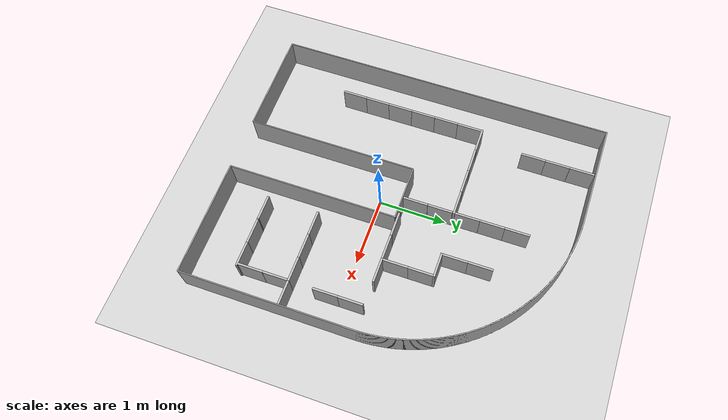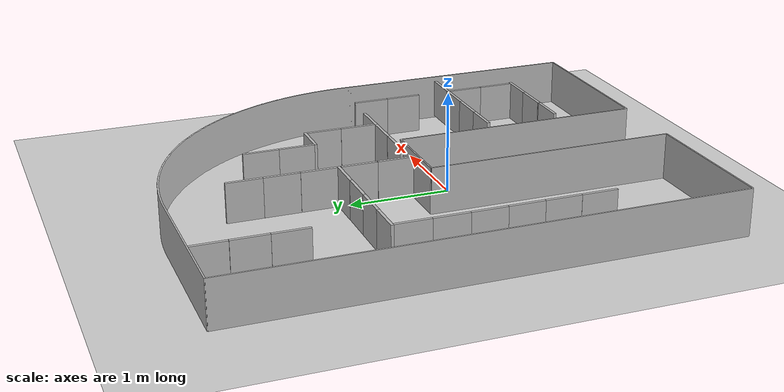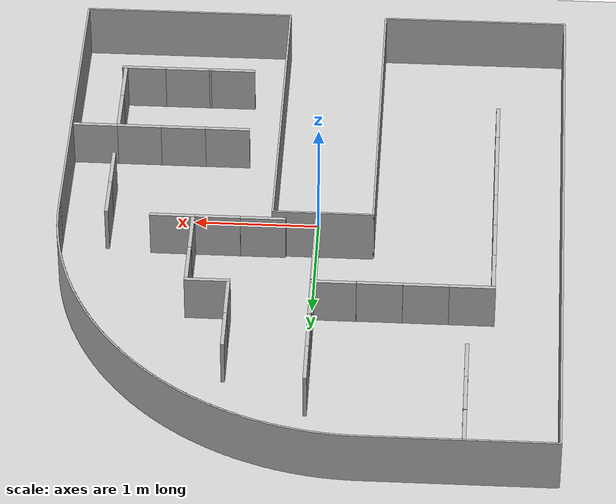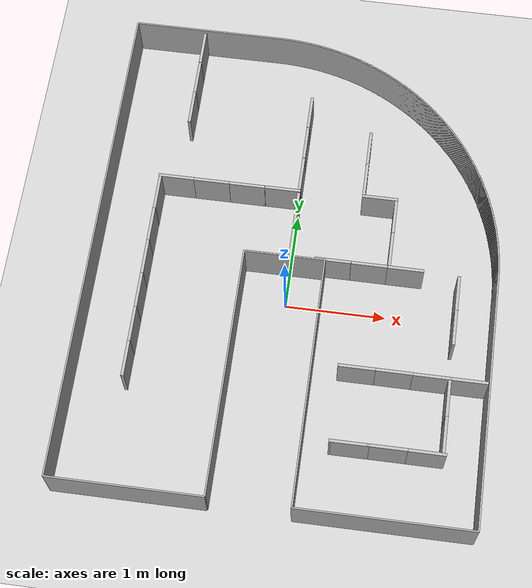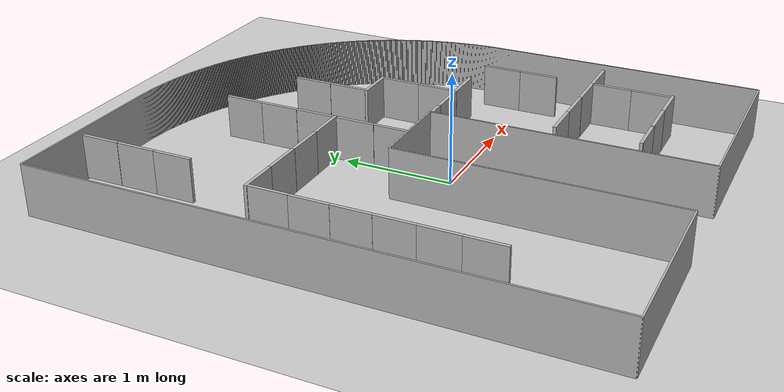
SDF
<sdf version="1.7">
 <world name="default">
  <light name="sun" type="directional">
   <pose>0 0 10 0 -0 0</pose>
   <diffuse>0.8 0.8 0.8 1</diffuse>
   <specular>0.2 0.2 0.2 1</specular>
   <attenuation>
    <range>1000</range>
    <constant>0.9</constant>
    <linear>0.01</linear>
    <quadratic>0.001</quadratic>
   </attenuation>
   <direction>-0.5 0.1 -0.9</direction>
   <spot><inner_angle>0</inner_angle><outer_angle>0</outer_angle><falloff>0</falloff></spot>
  </light>
  <model name="ground_plane">
   <static>1</static>
   <link name="link">
    <collision name="collision">
     <geometry><plane><normal>0 0 1</normal><size>100 100</size></plane></geometry>
     <surface>
      <contact><collide_bitmask>65535</collide_bitmask></contact>
      <friction><ode><mu>100</mu><mu2>50</mu2></ode></friction>
     </surface>
    </collision>
    <visual name="visual">
     <cast_shadows>0</cast_shadows>
     <geometry><plane><normal>0 0 1</normal><size>100 100</size></plane></geometry>
     <material>
      <script><uri>file://media/materials/scripts/gazebo.material</uri><name>Gazebo/Grey</name></script>
     </material>
    </visual>
   </link>
  </model>
  <gravity>0 0 -9.8</gravity>
  <magnetic_field>6e-06 2.3e-05 -4.2e-05</magnetic_field>
  <atmosphere type="adiabatic"/>
  <physics type="ode">
   <max_step_size>0.001</max_step_size>
   <real_time_factor>1</real_time_factor>
   <real_time_update_rate>1000</real_time_update_rate>
  </physics>
  <scene><ambient>0.4 0.4 0.4 1</ambient><background>0.7 0.7 0.7 1</background><shadows>1</shadows></scene>
  <audio><device>default</device></audio>
  <spherical_coordinates>
   <surface_model>EARTH_WGS84</surface_model>
   <latitude_deg>0</latitude_deg>
   <longitude_deg>0</longitude_deg>
   <elevation>0</elevation>
   <heading_deg>0</heading_deg>
  </spherical_coordinates>
  <model name="Arena">
   <static>1</static>
   <link name="link">
    <collision name="collision">
     <pose>0 0 0.212398 1.57 -0 0</pose>
     <geometry><mesh><scale>1 1 1</scale><uri>model://arena/meshes/arena.obj</uri></mesh></geometry>
    </collision>
    <visual name="visual">
     <pose>0 0 0.212398 1.57 -0 0</pose>
     <geometry><mesh><scale>1 1 1</scale><uri>model://arena/meshes/arena.obj</uri></mesh></geometry>
    </visual>
   </link>
   <pose>-0.068836 0.045499 0 0 -0 0</pose>
  </model>
  <model name="Placa1">
   <static>1</static>
   <link name="link">
    <collision name="collision">
     <pose>0 0 0.212398 1.57 -0 0</pose>
     <geometry><mesh><scale>1 1 1</scale><uri>model://placa/meshes/placa.obj</uri></mesh></geometry>
    </collision>
    <visual name="visual">
     <pose>0 0 0.212398 1.57 -0 0</pose>
     <geometry><mesh><scale>1 1 1</scale><uri>model://placa/meshes/placa.obj</uri></mesh></geometry>
    </visual>
   </link>
   <pose>0.784205 0.382248 0 0 -0 1.57</pose>
  </model>
  <model name="Placa2">
   <static>1</static>
   <link name="link">
    <collision name="collision">
     <pose>0 0 0.212398 1.57 -0 0</pose>
     <geometry><mesh><scale>1 1 1</scale><uri>model://placa/meshes/placa.obj</uri></mesh></geometry>
    </collision>
    <visual name="visual">
     <pose>0 0 0.212398 1.57 -0 0</pose>
     <geometry><mesh><scale>1 1 1</scale><uri>model://placa/meshes/placa.obj</uri></mesh></geometry>
    </visual>
   </link>
   <pose>0.421487 0.382249 0 0 -0 1.57</pose>
  </model>
  <model name="Placa3">
   <static>1</static>
   <link name="link">
    <collision name="collision">
     <pose>0 0 0.212398 1.57 -0 0</pose>
     <geometry><mesh><scale>1 1 1</scale><uri>model://placa/meshes/placa.obj</uri></mesh></geometry>
    </collision>
    <visual name="visual">
     <pose>0 0 0.212398 1.57 -0 0</pose>
     <geometry><mesh><scale>1 1 1</scale><uri>model://placa/meshes/placa.obj</uri></mesh></geometry>
    </visual>
   </link>
   <pose>1.14449 0.381387 0 0 -0 1.57</pose>
  </model>
  <model name="Placa5">
   <static>1</static>
   <link name="link">
    <collision name="collision">
     <pose>0 0 0.212398 1.57 -0 0</pose>
     <geometry><mesh><scale>1 1 1</scale><uri>model://placa/meshes/placa.obj</uri></mesh></geometry>
    </collision>
    <visual name="visual">
     <pose>0 0 0.212398 1.57 -0 0</pose>
     <geometry><mesh><scale>1 1 1</scale><uri>model://placa/meshes/placa.obj</uri></mesh></geometry>
    </visual>
   </link>
   <pose>1.85704 -0.701878 0 0 -0 1.57</pose>
  </model>
  <model name="Placa6">
   <static>1</static>
   <link name="link">
    <collision name="collision">
     <pose>0 0 0.212398 1.57 -0 0</pose>
     <geometry><mesh><scale>1 1 1</scale><uri>model://placa/meshes/placa.obj</uri></mesh></geometry>
    </collision>
    <visual name="visual">
     <pose>0 0 0.212398 1.57 -0 0</pose>
     <geometry><mesh><scale>1 1 1</scale><uri>model://placa/meshes/placa.obj</uri></mesh></geometry>
    </visual>
   </link>
   <pose>0.779151 -0.700836 0 0 -0 1.57</pose>
  </model>
  <model name="Placa7">
   <static>1</static>
   <link name="link">
    <collision name="collision">
     <pose>0 0 0.212398 1.57 -0 0</pose>
     <geometry><mesh><scale>1 1 1</scale><uri>model://placa/meshes/placa.obj</uri></mesh></geometry>
    </collision>
    <visual name="visual">
     <pose>0 0 0.212398 1.57 -0 0</pose>
     <geometry><mesh><scale>1 1 1</scale><uri>model://placa/meshes/placa.obj</uri></mesh></geometry>
    </visual>
   </link>
   <pose>1.14006 -0.700535 0 0 -0 1.57</pose>
  </model>
  <model name="Placa8">
   <static>1</static>
   <link name="link">
    <collision name="collision">
     <pose>0 0 0.212398 1.57 -0 0</pose>
     <geometry><mesh><scale>1 1 1</scale><uri>model://placa/meshes/placa.obj</uri></mesh></geometry>
    </collision>
    <visual name="visual">
     <pose>0 0 0.212398 1.57 -0 0</pose>
     <geometry><mesh><scale>1 1 1</scale><uri>model://placa/meshes/placa.obj</uri></mesh></geometry>
    </visual>
   </link>
   <pose>1.49727 -0.701656 0 0 -0 1.57</pose>
  </model>
  <model name="Placa9">
   <static>1</static>
   <link name="link">
    <collision name="collision">
     <pose>0 0 0.212398 1.57 -0 0</pose>
     <geometry><mesh><scale>1 1 1</scale><uri>model://placa/meshes/placa.obj</uri></mesh></geometry>
    </collision>
    <visual name="visual">
     <pose>0 0 0.212398 1.57 -0 0</pose>
     <geometry><mesh><scale>1 1 1</scale><uri>model://placa/meshes/placa.obj</uri></mesh></geometry>
    </visual>
   </link>
   <pose>1.52339 -1.45327 0 0 -0 1.57</pose>
  </model>
  <model name="Placa10">
   <static>1</static>
   <link name="link">
    <collision name="collision">
     <pose>0 0 0.212398 1.57 -0 0</pose>
     <geometry><mesh><scale>1 1 1</scale><uri>model://placa/meshes/placa.obj</uri></mesh></geometry>
    </collision>
    <visual name="visual">
     <pose>0 0 0.212398 1.57 -0 0</pose>
     <geometry><mesh><scale>1 1 1</scale><uri>model://placa/meshes/placa.obj</uri></mesh></geometry>
    </visual>
   </link>
   <pose>1.16215 -1.45299 0 0 -0 1.57</pose>
  </model>
  <model name="Placa11">
   <static>1</static>
   <link name="link">
    <collision name="collision">
     <pose>0 0 0.212398 1.57 -0 0</pose>
     <geometry><mesh><scale>1 1 1</scale><uri>model://placa/meshes/placa.obj</uri></mesh></geometry>
    </collision>
    <visual name="visual">
     <pose>0 0 0.212398 1.57 -0 0</pose>
     <geometry><mesh><scale>1 1 1</scale><uri>model://placa/meshes/placa.obj</uri></mesh></geometry>
    </visual>
   </link>
   <pose>0.801287 -1.45446 0 0 -0 1.57</pose>
  </model>
  <model name="Placa12">
   <static>1</static>
   <link name="link">
    <collision name="collision">
     <pose>0 0 0.212398 1.57 -0 0</pose>
     <geometry><mesh><scale>1 1 1</scale><uri>model://placa/meshes/placa.obj</uri></mesh></geometry>
    </collision>
    <visual name="visual">
     <pose>0 0 0.212398 1.57 -0 0</pose>
     <geometry><mesh><scale>1 1 1</scale><uri>model://placa/meshes/placa.obj</uri></mesh></geometry>
    </visual>
   </link>
   <pose>-1.41837 -0.893186 0 0 -0 0</pose>
  </model>
  <model name="Placa13">
   <static>1</static>
   <link name="link">
    <collision name="collision">
     <pose>0 0 0.212398 1.57 -0 0</pose>
     <geometry><mesh><scale>1 1 1</scale><uri>model://placa/meshes/placa.obj</uri></mesh></geometry>
    </collision>
    <visual name="visual">
     <pose>0 0 0.212398 1.57 -0 0</pose>
     <geometry><mesh><scale>1 1 1</scale><uri>model://placa/meshes/placa.obj</uri></mesh></geometry>
    </visual>
   </link>
   <pose>-1.25678 1.10359 0 0 -0 1.57</pose>
  </model>
  <model name="Placa14">
   <static>1</static>
   <link name="link">
    <collision name="collision">
     <pose>0 0 0.212398 1.57 -0 0</pose>
     <geometry><mesh><scale>1 1 1</scale><uri>model://placa/meshes/placa.obj</uri></mesh></geometry>
    </collision>
    <visual name="visual">
     <pose>0 0 0.212398 1.57 -0 0</pose>
     <geometry><mesh><scale>1 1 1</scale><uri>model://placa/meshes/placa.obj</uri></mesh></geometry>
    </visual>
   </link>
   <pose>-0.895842 1.10339 0 0 -0 1.57</pose>
  </model>
  <model name="Placa15">
   <static>1</static>
   <link name="link">
    <collision name="collision">
     <pose>0 0 0.212398 1.57 -0 0</pose>
     <geometry><mesh><scale>1 1 1</scale><uri>model://placa/meshes/placa.obj</uri></mesh></geometry>
    </collision>
    <visual name="visual">
     <pose>0 0 0.212398 1.57 -0 0</pose>
     <geometry><mesh><scale>1 1 1</scale><uri>model://placa/meshes/placa.obj</uri></mesh></geometry>
    </visual>
   </link>
   <pose>-0.533839 1.10288 0 0 -0 1.57</pose>
  </model>
  <model name="Placa16">
   <static>1</static>
   <link name="link">
    <collision name="collision">
     <pose>0 0 0.212398 1.57 -0 0</pose>
     <geometry><mesh><scale>1 1 1</scale><uri>model://placa/meshes/placa.obj</uri></mesh></geometry>
    </collision>
    <visual name="visual">
     <pose>0 0 0.212398 1.57 -0 0</pose>
     <geometry><mesh><scale>1 1 1</scale><uri>model://placa/meshes/placa.obj</uri></mesh></geometry>
    </visual>
   </link>
   <pose>-0.170787 1.10447 0 0 -0 1.57</pose>
  </model>
  <model name="Placa17">
   <static>1</static>
   <link name="link">
    <collision name="collision">
     <pose>0 0 0.212398 1.57 -0 0</pose>
     <geometry><mesh><scale>1 1 1</scale><uri>model://placa/meshes/placa.obj</uri></mesh></geometry>
    </collision>
    <visual name="visual">
     <pose>0 0 0.212398 1.57 -0 0</pose>
     <geometry><mesh><scale>1 1 1</scale><uri>model://placa/meshes/placa.obj</uri></mesh></geometry>
    </visual>
   </link>
   <pose>0.812726 1.13007 0 0 -0 1.57</pose>
  </model>
  <model name="Placa18">
   <static>1</static>
   <link name="link">
    <collision name="collision">
     <pose>0 0 0.212398 1.57 -0 0</pose>
     <geometry><mesh><scale>1 1 1</scale><uri>model://placa/meshes/placa.obj</uri></mesh></geometry>
    </collision>
    <visual name="visual">
     <pose>0 0 0.212398 1.57 -0 0</pose>
     <geometry><mesh><scale>1 1 1</scale><uri>model://placa/meshes/placa.obj</uri></mesh></geometry>
    </visual>
   </link>
   <pose>-1.4176 -0.532509 0 0 -0 0</pose>
  </model>
  <model name="Placa19">
   <static>1</static>
   <link name="link">
    <collision name="collision">
     <pose>0 0 0.212398 1.57 -0 0</pose>
     <geometry><mesh><scale>1 1 1</scale><uri>model://placa/meshes/placa.obj</uri></mesh></geometry>
    </collision>
    <visual name="visual">
     <pose>0 0 0.212398 1.57 -0 0</pose>
     <geometry><mesh><scale>1 1 1</scale><uri>model://placa/meshes/placa.obj</uri></mesh></geometry>
    </visual>
   </link>
   <pose>-1.41793 -0.172653 0 0 -0 0</pose>
  </model>
  <model name="Placa20">
   <static>1</static>
   <link name="link">
    <collision name="collision">
     <pose>0 0 0.212398 1.57 -0 0</pose>
     <geometry><mesh><scale>1 1 1</scale><uri>model://placa/meshes/placa.obj</uri></mesh></geometry>
    </collision>
    <visual name="visual">
     <pose>0 0 0.212398 1.57 -0 0</pose>
     <geometry><mesh><scale>1 1 1</scale><uri>model://placa/meshes/placa.obj</uri></mesh></geometry>
    </visual>
   </link>
   <pose>-1.41847 0.1891 0 0 -0 0</pose>
  </model>
  <model name="Placa21">
   <static>1</static>
   <link name="link">
    <collision name="collision">
     <pose>0 0 0.212398 1.57 -0 0</pose>
     <geometry><mesh><scale>1 1 1</scale><uri>model://placa/meshes/placa.obj</uri></mesh></geometry>
    </collision>
    <visual name="visual">
     <pose>0 0 0.212398 1.57 -0 0</pose>
     <geometry><mesh><scale>1 1 1</scale><uri>model://placa/meshes/placa.obj</uri></mesh></geometry>
    </visual>
   </link>
   <pose>-1.41961 0.548501 0 0 -0 0</pose>
  </model>
  <model name="Placa22">
   <static>1</static>
   <link name="link">
    <collision name="collision">
     <pose>0 0 0.212398 1.57 -0 0</pose>
     <geometry><mesh><scale>1 1 1</scale><uri>model://placa/meshes/placa.obj</uri></mesh></geometry>
    </collision>
    <visual name="visual">
     <pose>0 0 0.212398 1.57 -0 0</pose>
     <geometry><mesh><scale>1 1 1</scale><uri>model://placa/meshes/placa.obj</uri></mesh></geometry>
    </visual>
   </link>
   <pose>-1.41822 0.907479 0 0 -0 0</pose>
  </model>
  <model name="Placa23">
   <static>1</static>
   <link name="link">
    <collision name="collision">
     <pose>0 0 0.212398 1.57 -0 0</pose>
     <geometry><mesh><scale>1 1 1</scale><uri>model://placa/meshes/placa.obj</uri></mesh></geometry>
    </collision>
    <visual name="visual">
     <pose>0 0 0.212398 1.57 -0 0</pose>
     <geometry><mesh><scale>1 1 1</scale><uri>model://placa/meshes/placa.obj</uri></mesh></geometry>
    </visual>
   </link>
   <pose>-0.003877 0.538579 0 0 -0 0</pose>
  </model>
  <model name="Placa24">
   <static>1</static>
   <link name="link">
    <collision name="collision">
     <pose>0 0 0.212398 1.57 -0 0</pose>
     <geometry><mesh><scale>1 1 1</scale><uri>model://placa/meshes/placa.obj</uri></mesh></geometry>
    </collision>
    <visual name="visual">
     <pose>0 0 0.212398 1.57 -0 0</pose>
     <geometry><mesh><scale>1 1 1</scale><uri>model://placa/meshes/placa.obj</uri></mesh></geometry>
    </visual>
   </link>
   <pose>-0.004145 0.901629 0 0 -0 0</pose>
  </model>
  <model name="Placa25">
   <static>1</static>
   <link name="link">
    <collision name="collision">
     <pose>0 0 0.212398 1.57 -0 0</pose>
     <geometry><mesh><scale>1 1 1</scale><uri>model://placa/meshes/placa.obj</uri></mesh></geometry>
    </collision>
    <visual name="visual">
     <pose>0 0 0.212398 1.57 -0 0</pose>
     <geometry><mesh><scale>1 1 1</scale><uri>model://placa/meshes/placa.obj</uri></mesh></geometry>
    </visual>
   </link>
   <pose>0.978331 0.577393 0 0 -0 0</pose>
  </model>
  <model name="Placa26">
   <static>1</static>
   <link name="link">
    <collision name="collision">
     <pose>0 0 0.212398 1.57 -0 0</pose>
     <geometry><mesh><scale>1 1 1</scale><uri>model://placa/meshes/placa.obj</uri></mesh></geometry>
    </collision>
    <visual name="visual">
     <pose>0 0 0.212398 1.57 -0 0</pose>
     <geometry><mesh><scale>1 1 1</scale><uri>model://placa/meshes/placa.obj</uri></mesh></geometry>
    </visual>
   </link>
   <pose>0.978684 0.939051 0 0 -0 0</pose>
  </model>
  <model name="Placa27">
   <static>1</static>
   <link name="link">
    <collision name="collision">
     <pose>0 0 0.212398 1.57 -0 0</pose>
     <geometry><mesh><scale>1 1 1</scale><uri>model://placa/meshes/placa.obj</uri></mesh></geometry>
    </collision>
    <visual name="visual">
     <pose>0 0 0.212398 1.57 -0 0</pose>
     <geometry><mesh><scale>1 1 1</scale><uri>model://placa/meshes/placa.obj</uri></mesh></geometry>
    </visual>
   </link>
   <pose>1.6719 0.186668 0 0 -0 0</pose>
  </model>
  <model name="Placa28">
   <static>1</static>
   <link name="link">
    <collision name="collision">
     <pose>0 0 0.212398 1.57 -0 0</pose>
     <geometry><mesh><scale>1 1 1</scale><uri>model://placa/meshes/placa.obj</uri></mesh></geometry>
    </collision>
    <visual name="visual">
     <pose>0 0 0.212398 1.57 -0 0</pose>
     <geometry><mesh><scale>1 1 1</scale><uri>model://placa/meshes/placa.obj</uri></mesh></geometry>
    </visual>
   </link>
   <pose>1.67258 -0.174857 0 0 -0 0</pose>
  </model>
  <model name="Placa29">
   <static>1</static>
   <link name="link">
    <collision name="collision">
     <pose>0 0 0.212398 1.57 -0 0</pose>
     <geometry><mesh><scale>1 1 1</scale><uri>model://placa/meshes/placa.obj</uri></mesh></geometry>
    </collision>
    <visual name="visual">
     <pose>0 0 0.212398 1.57 -0 0</pose>
     <geometry><mesh><scale>1 1 1</scale><uri>model://placa/meshes/placa.obj</uri></mesh></geometry>
    </visual>
   </link>
   <pose>1.67094 -0.898189 0 0 -0 0</pose>
  </model>
  <model name="Placa30">
   <static>1</static>
   <link name="link">
    <collision name="collision">
     <pose>0 0 0.212398 1.57 -0 0</pose>
     <geometry><mesh><scale>1 1 1</scale><uri>model://placa/meshes/placa.obj</uri></mesh></geometry>
    </collision>
    <visual name="visual">
     <pose>0 0 0.212398 1.57 -0 0</pose>
     <geometry><mesh><scale>1 1 1</scale><uri>model://placa/meshes/placa.obj</uri></mesh></geometry>
    </visual>
   </link>
   <pose>1.672 -1.25999 0 0 -0 0</pose>
  </model>
  <model name="Placa31">
   <static>1</static>
   <link name="link">
    <collision name="collision">
     <pose>0 0 0.212398 1.57 -0 0</pose>
     <geometry><mesh><scale>1 1 1</scale><uri>model://placa/meshes/placa.obj</uri></mesh></geometry>
    </collision>
    <visual name="visual">
     <pose>0 0 0.212398 1.57 -0 0</pose>
     <geometry><mesh><scale>1 1 1</scale><uri>model://placa/meshes/placa.obj</uri></mesh></geometry>
    </visual>
   </link>
   <pose>-0.004867 1.30252 0 0 -0 0</pose>
  </model>
  <model name="Placa32">
   <static>1</static>
   <link name="link">
    <collision name="collision">
     <pose>0 0 0.212398 1.57 -0 0</pose>
     <geometry><mesh><scale>1 1 1</scale><uri>model://placa/meshes/placa.obj</uri></mesh></geometry>
    </collision>
    <visual name="visual">
     <pose>0 0 0.212398 1.57 -0 0</pose>
     <geometry><mesh><scale>1 1 1</scale><uri>model://placa/meshes/placa.obj</uri></mesh></geometry>
    </visual>
   </link>
   <pose>-0.006013 1.66468 0 0 -0 0</pose>
  </model>
  <model name="Placa33">
   <static>1</static>
   <link name="link">
    <collision name="collision">
     <pose>0 0 0.212398 1.57 -0 0</pose>
     <geometry><mesh><scale>1 1 1</scale><uri>model://placa/meshes/placa.obj</uri></mesh></geometry>
    </collision>
    <visual name="visual">
     <pose>0 0 0.212398 1.57 -0 0</pose>
     <geometry><mesh><scale>1 1 1</scale><uri>model://placa/meshes/placa.obj</uri></mesh></geometry>
    </visual>
   </link>
   <pose>0.645935 1.32237 0 0 -0 0</pose>
  </model>
  <model name="Placa34">
   <static>1</static>
   <link name="link">
    <collision name="collision">
     <pose>0 0 0.212398 1.57 -0 0</pose>
     <geometry><mesh><scale>1 1 1</scale><uri>model://placa/meshes/placa.obj</uri></mesh></geometry>
    </collision>
    <visual name="visual">
     <pose>0 0 0.212398 1.57 -0 0</pose>
     <geometry><mesh><scale>1 1 1</scale><uri>model://placa/meshes/placa.obj</uri></mesh></geometry>
    </visual>
   </link>
   <pose>0.643872 1.683 0 0 -0 0</pose>
  </model>
  <model name="Placa35">
   <static>1</static>
   <link name="link">
    <collision name="collision">
     <pose>0 0 0.212398 1.57 -0 0</pose>
     <geometry><mesh><scale>1 1 1</scale><uri>model://placa/meshes/placa.obj</uri></mesh></geometry>
    </collision>
    <visual name="visual">
     <pose>0 0 0.212398 1.57 -0 0</pose>
     <geometry><mesh><scale>1 1 1</scale><uri>model://placa/meshes/placa.obj</uri></mesh></geometry>
    </visual>
   </link>
   <pose>-0.006787 2.02415 0 0 -0 0</pose>
  </model>
  <model name="Placa36">
   <static>1</static>
   <link name="link">
    <collision name="collision">
     <pose>0 0 0.212398 1.57 -0 0</pose>
     <geometry><mesh><scale>1 1 1</scale><uri>model://placa/meshes/placa.obj</uri></mesh></geometry>
    </collision>
    <visual name="visual">
     <pose>0 0 0.212398 1.57 -0 0</pose>
     <geometry><mesh><scale>1 1 1</scale><uri>model://placa/meshes/placa.obj</uri></mesh></geometry>
    </visual>
   </link>
   <pose>-1.23101 2.66094 0 0 -0 0</pose>
  </model>
  <model name="Placa37">
   <static>1</static>
   <link name="link">
    <collision name="collision">
     <pose>0 0 0.212398 1.57 -0 0</pose>
     <geometry><mesh><scale>1 1 1</scale><uri>model://placa/meshes/placa.obj</uri></mesh></geometry>
    </collision>
    <visual name="visual">
     <pose>0 0 0.212398 1.57 -0 0</pose>
     <geometry><mesh><scale>1 1 1</scale><uri>model://placa/meshes/placa.obj</uri></mesh></geometry>
    </visual>
   </link>
   <pose>-1.23015 2.29757 0 0 -0 0</pose>
  </model>
  <model name="Placa38">
   <static>1</static>
   <link name="link">
    <collision name="collision">
     <pose>0 0 0.212398 1.57 -0 0</pose>
     <geometry><mesh><scale>1 1 1</scale><uri>model://placa/meshes/placa.obj</uri></mesh></geometry>
    </collision>
    <visual name="visual">
     <pose>0 0 0.212398 1.57 -0 0</pose>
     <geometry><mesh><scale>1 1 1</scale><uri>model://placa/meshes/placa.obj</uri></mesh></geometry>
    </visual>
   </link>
   <pose>-1.2307 1.93631 0 0 -0 0</pose>
  </model>
  <model name="Placa39">
   <static>1</static>
   <link name="link">
    <collision name="collision">
     <pose>0 0 0.212398 1.57 -0 0</pose>
     <geometry><mesh><scale>1 1 1</scale><uri>model://placa/meshes/placa.obj</uri></mesh></geometry>
    </collision>
    <visual name="visual">
     <pose>0 0 0.212398 1.57 -0 0</pose>
     <geometry><mesh><scale>1 1 1</scale><uri>model://placa/meshes/placa.obj</uri></mesh></geometry>
    </visual>
   </link>
   <pose>0.783625 -1.45445 0 0 -0 1.57</pose>
  </model>
 </world>
</sdf>
